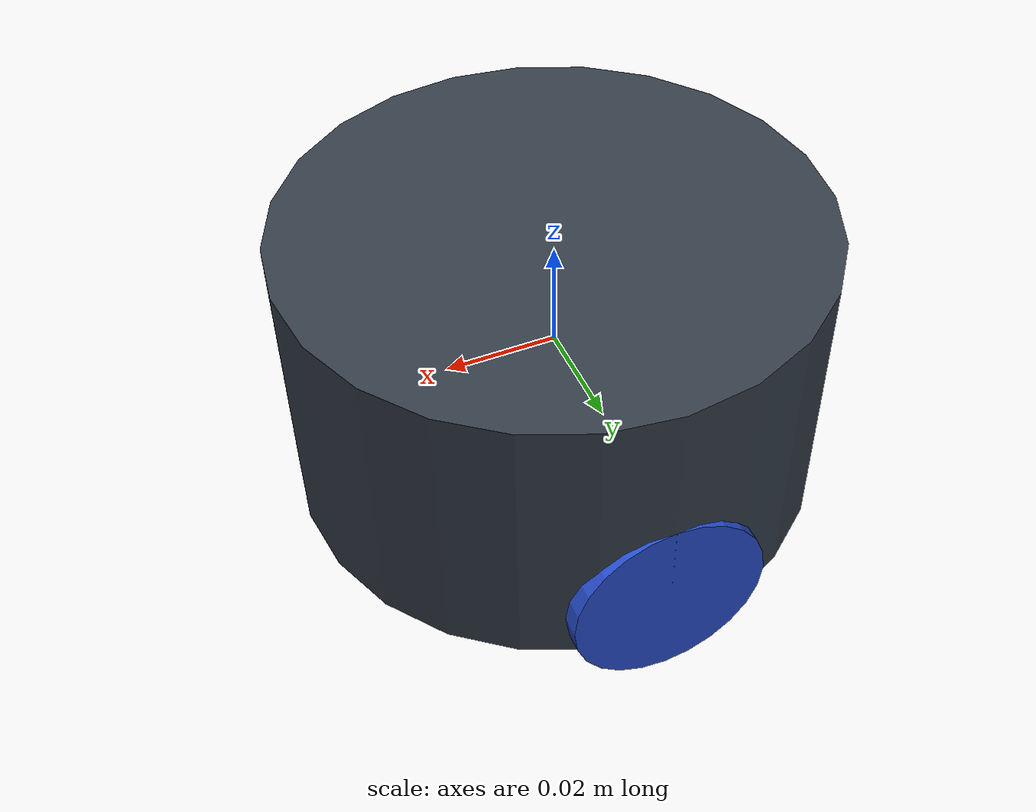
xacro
<?xml version="1.0" ?>
<robot name="m2wr" xmlns:xacro="https://www.ros.org/wiki/xacro" >

  <material name="black">
    <color rgba="0.0 0.0 0.0 1.0"/>
  </material>
  <material name="blue">
    <color rgba="0.203125 0.23828125 0.28515625 1.0"/>
  </material>
  <material name="green">
    <color rgba="0.0 0.8 0.0 1.0"/>
  </material>
  <material name="grey">
    <color rgba="0.2 0.2 0.2 1.0"/>
  </material>
  <material name="orange">
    <color rgba="1.0 0.423529411765 0.0392156862745 1.0"/>
  </material>
  <material name="brown">
    <color rgba="0.870588235294 0.811764705882 0.764705882353 1.0"/>
  </material>
  <material name="red">
    <color rgba="0.80078125 0.12890625 0.1328125 1.0"/>
  </material>
  <material name="white">
    <color rgba="1.0 1.0 1.0 1.0"/>
  </material>

  <gazebo reference="link_chassis">
    <material>Gazebo/Orange</material>
  </gazebo>
  <gazebo reference="link_left_wheel">
    <material>Gazebo/Blue</material>
  </gazebo>
  <gazebo reference="link_right_wheel">
    <material>Gazebo/Blue</material>
  </gazebo>

  <xacro:property name="chassisMass" value="5"/>
  <xacro:property name="wheelMass" value="0.1"/>
  <xacro:property name="chassisDiam" value="0.095"/>
  <xacro:property name="wheelDiam" value="0.034"/>
  <xacro:property name="distanceGround" value="0.0085"/>
  <xacro:property name="heightRobot" value="0.06"/>
  <xacro:property name="wheelThickness" value="0.005"/>
  <xacro:property name="wheelSeparation" value="0.09"/>

  <link name="link_chassis">
    <!-- pose and inertial -->
    <pose>0 0 ${distanceGround} 0 0 0</pose>

    <inertial>
      <mass value="${chassisMass}"/>
      <origin rpy="0 0 0" xyz="0 0 0"/>
      <inertia ixx="0.0395416666667" ixy="0" ixz="0" iyy="0.106208333333" iyz="0" izz="0.106208333333"/>
    </inertial>

    <collision name="collision_chassis">
      <geometry>
	<cylinder length="${heightRobot-distanceGround}" radius="${chassisDiam/2}"/>
      </geometry>
    </collision>

    <visual>
      <origin rpy="0 0 0" xyz="0 0 0"/>
      <geometry>
	<cylinder length="${heightRobot-distanceGround}" radius="${chassisDiam/2}"/>
      </geometry>
      <material name="blue"/>
    </visual>

    <!-- caster front -->
    <collision name="caster_front_collision">
      <origin rpy=" 0 0 0" xyz="0.038 0 -${(heightRobot-distanceGround)/2-0.001}"/>
      <geometry>
        <sphere radius="${distanceGround}"/>
      </geometry>
      <surface>
        <friction>
          <ode>
            <mu>0</mu>
            <mu2>0</mu2>
            <slip1>1.0</slip1>
            <slip2>1.0</slip2>
          </ode>
        </friction>
      </surface>
    </collision>
    <visual name="caster_front_visual">
      <origin rpy=" 0 0 0" xyz="0.038 0 -${(heightRobot-distanceGround)/2-0.001}"/>
      <geometry>
        <sphere radius="${distanceGround}"/>
      </geometry>
    </visual>

	<!-- caster back -->
    <collision name="caster_back_collision">
      <origin rpy=" 0 0 0" xyz="-0.038 0 -${(heightRobot-distanceGround)/2-0.001}"/>
      <geometry>
        <sphere radius="${distanceGround}"/>
      </geometry>
      <surface>
        <friction>
          <ode>
            <mu>0</mu>
            <mu2>0</mu2>
            <slip1>1.0</slip1>
            <slip2>1.0</slip2>
          </ode>
        </friction>
      </surface>
    </collision>
    <visual name="caster_back_visual">
      <origin rpy=" 0 0 0" xyz="-0.038 0 -${(heightRobot-distanceGround)/2-0.001}"/>
      <geometry>
        <sphere radius="${distanceGround}"/>
      </geometry>
    </visual>
    </link>

  <!-- Create wheel right -->

  <link name="link_right_wheel">
    <inertial>
      <mass value="${wheelMass}"/>
      <origin rpy="0 1.5707 1.5707" xyz="0 0 0"/>
      <inertia ixx="0.00052666666" ixy="0" ixz="0" iyy="0.00052666666" iyz="0" izz="0.001"/>
    </inertial>

    <collision name="link_right_wheel_collision">
      <origin rpy="0 1.5707 1.5707" xyz="0 0 0" />
      <geometry>
        <cylinder length="${wheelThickness}" radius="${wheelDiam/2}"/>
      </geometry>
    </collision>

    <visual name="link_right_wheel_visual">
      <origin rpy="0 1.5707 1.5707" xyz="0 0 0"/>
      <geometry>
        <cylinder length="${wheelThickness}" radius="${wheelDiam/2}"/>
      </geometry>
    </visual>

  </link>

  <!--   Joint for right wheel  -->
  <joint name="joint_right_wheel" type="continuous">
    <origin rpy="0 0 0" xyz="0 ${wheelSeparation/2} -${(heightRobot-distanceGround)/2-(wheelDiam/2)+distanceGround}"/>
    <child link="link_right_wheel" />
    <parent link="link_chassis"/>
    <axis rpy="0 0 0" xyz="0 1 0"/>
    <limit effort="10000" velocity="1000"/>
    <joint_properties damping="1.0" friction="1.0" />
  </joint>

  <!-- Left Wheel link -->

  <link name="link_left_wheel">
    <inertial>
      <mass value="${wheelMass}"/>
      <origin rpy="0 1.5707 1.5707" xyz="0 0 0"/>
      <inertia ixx="0.00052666666" ixy="0" ixz="0" iyy="0.00052666666" iyz="0" izz="0.001"/>
    </inertial>

    <collision name="link_left_wheel_collision">
      <origin rpy="0 1.5707 1.5707" xyz="0 0 0" />
      <geometry>
        <cylinder length="${wheelThickness}" radius="${wheelDiam/2}"/>
      </geometry>
    </collision>

    <visual name="link_left_wheel_visual">
      <origin rpy="0 1.5707 1.5707" xyz="0 0 0"/>
      <geometry>
        <cylinder length="${wheelThickness}" radius="${wheelDiam/2}"/>
      </geometry>
    </visual>

  </link>

  <!--   Joint for left wheel  -->
  <joint name="joint_left_wheel" type="continuous">
    <origin rpy="0 0 0" xyz="0 -${wheelSeparation/2} -${(heightRobot-distanceGround)/2-(wheelDiam/2)+distanceGround}"/>
    <child link="link_left_wheel" />
    <parent link="link_chassis"/>
    <axis rpy="0 0 0" xyz="0 1 0"/>
    <limit effort="10000" velocity="1000"/>
    <joint_properties damping="1.0" friction="1.0" />
  </joint>

  <gazebo>
    <plugin filename="libgazebo_ros_diff_drive.so" name="differential_drive_controller">
      <legacyMode>true</legacyMode>
      <alwaysOn>true</alwaysOn>
      <updateRate>20</updateRate>
      <leftJoint>joint_left_wheel</leftJoint>
      <rightJoint>joint_right_wheel</rightJoint>
      <wheelSeparation>${wheelSeparation}</wheelSeparation>
      <wheelDiameter>${wheelDiam}</wheelDiameter>
      <torque>0.1</torque>
      <commandTopic>cmd_vel</commandTopic>
      <robotBaseFrame>link_chassis</robotBaseFrame>
    </plugin>
  </gazebo>

</robot>
